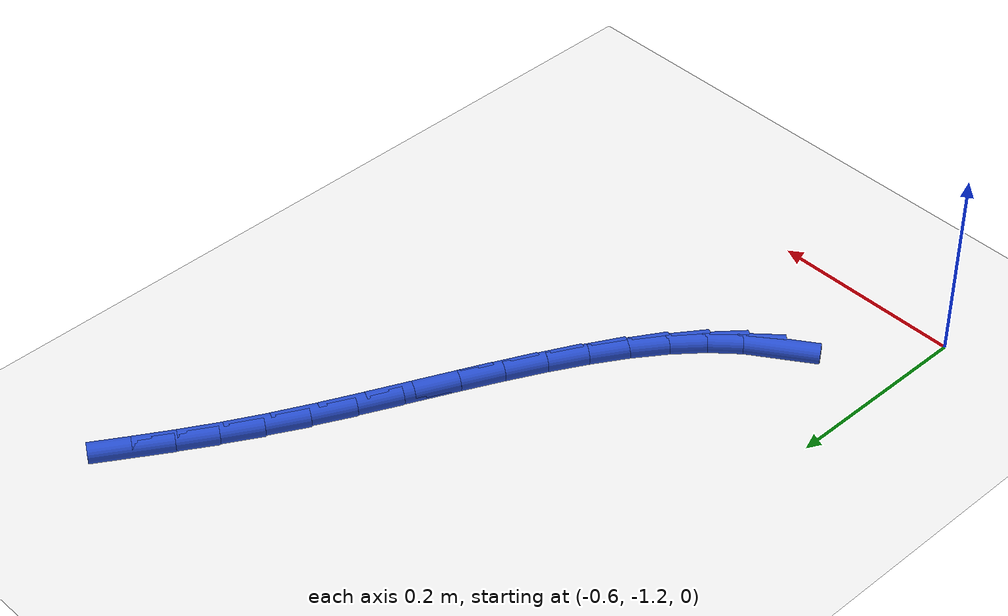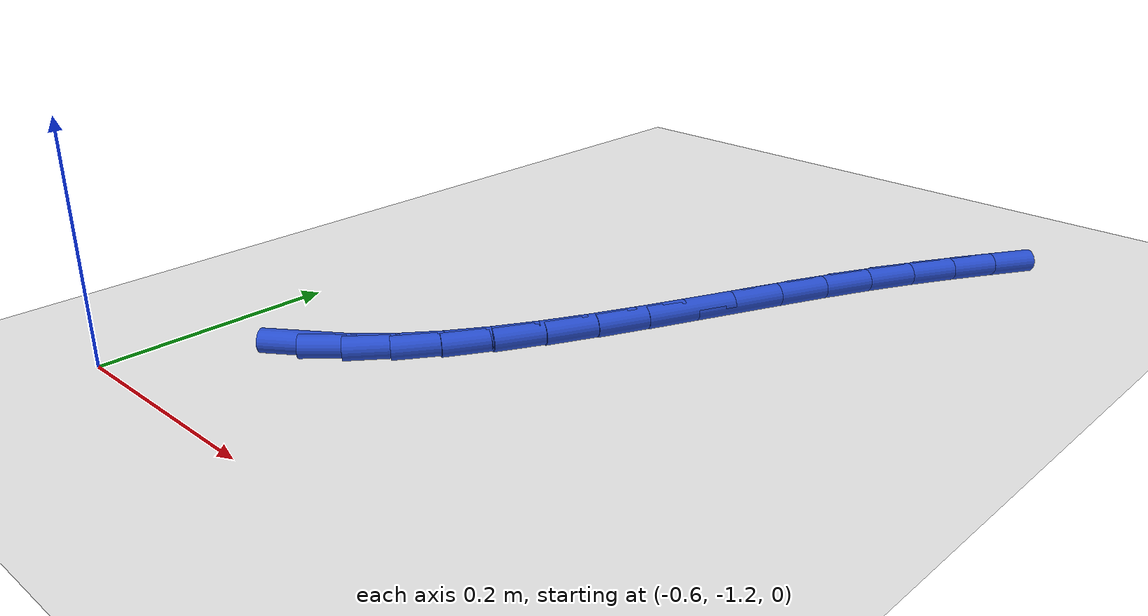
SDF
<sdf version="1.6">
 <world name="default">
  <model name="ground_plane">
   <static>1</static>
   <link name="link">
    <collision name="collision">
     <geometry><plane><normal>0 0 1</normal><size>100 100</size></plane></geometry>
     <surface><friction><ode><mu>100</mu><mu2>50</mu2></ode></friction></surface>
    </collision>
    <visual name="visual">
     <cast_shadows>0</cast_shadows>
     <geometry><plane><normal>0 0 1</normal><size>100 100</size></plane></geometry>
     <material>
      <script><uri>file://media/materials/scripts/gazebo.material</uri><name>Gazebo/WhiteGlow</name></script>
     </material>
    </visual>
   </link>
  </model>
  <model name="line">
   <link name="link_150">
    <pose>-0.497844327991714 -1.0755147405187322 0.01 0 1.57 0.6069006060644294</pose>
    <collision name="collision">
     <geometry><cylinder><radius>0.01</radius><length>0.08</length></cylinder></geometry>
    </collision>
    <visual name="visual">
     <material>
      <script><name>Gazebo/Blue</name><uri>file://media/materials/scripts/gazebo.material</uri></script>
     </material>
     <geometry><cylinder><radius>0.01</radius><length>0.08</length></cylinder></geometry>
    </visual>
   </link>
   <link name="link_151">
    <pose>-0.4704250698186313 -1.0564771270306426 0.01 0 1.57 0.7529966082276169</pose>
    <collision name="collision">
     <geometry><cylinder><radius>0.01</radius><length>0.08</length></cylinder></geometry>
    </collision>
    <visual name="visual">
     <material>
      <script><name>Gazebo/Blue</name><uri>file://media/materials/scripts/gazebo.material</uri></script>
     </material>
     <geometry><cylinder><radius>0.01</radius><length>0.08</length></cylinder></geometry>
    </visual>
   </link>
   <link name="link_152">
    <pose>-0.4449101212090136 -1.0325642766753929 0.01 0 1.57 0.868521582352478</pose>
    <collision name="collision">
     <geometry><cylinder><radius>0.01</radius><length>0.08</length></cylinder></geometry>
    </collision>
    <visual name="visual">
     <material>
      <script><name>Gazebo/Blue</name><uri>file://media/materials/scripts/gazebo.material</uri></script>
     </material>
     <geometry><cylinder><radius>0.01</radius><length>0.08</length></cylinder></geometry>
    </visual>
   </link>
   <link name="link_153">
    <pose>-0.421060533780112 -1.0043794187918909 0.01 0 1.57 0.957428312732397</pose>
    <collision name="collision">
     <geometry><cylinder><radius>0.01</radius><length>0.08</length></cylinder></geometry>
    </collision>
    <visual name="visual">
     <material>
      <script><name>Gazebo/Blue</name><uri>file://media/materials/scripts/gazebo.material</uri></script>
     </material>
     <geometry><cylinder><radius>0.01</radius><length>0.08</length></cylinder></geometry>
    </visual>
   </link>
   <link name="link_154">
    <pose>-0.3986373591491775 -0.9725257827190423 0.01 0 1.57 1.0244139173818925</pose>
    <collision name="collision">
     <geometry><cylinder><radius>0.01</radius><length>0.08</length></cylinder></geometry>
    </collision>
    <visual name="visual">
     <material>
      <script><name>Gazebo/Blue</name><uri>file://media/materials/scripts/gazebo.material</uri></script>
     </material>
     <geometry><cylinder><radius>0.01</radius><length>0.08</length></cylinder></geometry>
    </visual>
   </link>
   <link name="link_155">
    <pose>-0.377401648933462 -0.937606597795757 0.01 0 1.57 1.0735697910841198</pose>
    <collision name="collision">
     <geometry><cylinder><radius>0.01</radius><length>0.08</length></cylinder></geometry>
    </collision>
    <visual name="visual">
     <material>
      <script><name>Gazebo/Blue</name><uri>file://media/materials/scripts/gazebo.material</uri></script>
     </material>
     <geometry><cylinder><radius>0.01</radius><length>0.08</length></cylinder></geometry>
    </visual>
   </link>
   <link name="link_156">
    <pose>-0.3571144547502161 -0.9002250933609411 0.01 0 1.57 1.108019027293459</pose>
    <collision name="collision">
     <geometry><cylinder><radius>0.01</radius><length>0.08</length></cylinder></geometry>
    </collision>
    <visual name="visual">
     <material>
      <script><name>Gazebo/Blue</name><uri>file://media/materials/scripts/gazebo.material</uri></script>
     </material>
     <geometry><cylinder><radius>0.01</radius><length>0.08</length></cylinder></geometry>
    </visual>
   </link>
   <link name="link_157">
    <pose>-0.3375368282166914 -0.8609844987535021 0.01 0 1.57 1.1299463935147231</pose>
    <collision name="collision">
     <geometry><cylinder><radius>0.01</radius><length>0.08</length></cylinder></geometry>
    </collision>
    <visual name="visual">
     <material>
      <script><name>Gazebo/Blue</name><uri>file://media/materials/scripts/gazebo.material</uri></script>
     </material>
     <geometry><cylinder><radius>0.01</radius><length>0.08</length></cylinder></geometry>
    </visual>
   </link>
   <link name="link_158">
    <pose>-0.3184298209501387 -0.8204880433123474 0.01 0 1.57 1.1407260534056922</pose>
    <collision name="collision">
     <geometry><cylinder><radius>0.01</radius><length>0.08</length></cylinder></geometry>
    </collision>
    <visual name="visual">
     <material>
      <script><name>Gazebo/Blue</name><uri>file://media/materials/scripts/gazebo.material</uri></script>
     </material>
     <geometry><cylinder><radius>0.01</radius><length>0.08</length></cylinder></geometry>
    </visual>
   </link>
   <link name="link_159">
    <pose>-0.2995544845678089 -0.7793389563763833 0.01 0 1.57 1.1410345883458162</pose>
    <collision name="collision">
     <geometry><cylinder><radius>0.01</radius><length>0.08</length></cylinder></geometry>
    </collision>
    <visual name="visual">
     <material>
      <script><name>Gazebo/Blue</name><uri>file://media/materials/scripts/gazebo.material</uri></script>
     </material>
     <geometry><cylinder><radius>0.01</radius><length>0.08</length></cylinder></geometry>
    </visual>
   </link>
   <link name="link_160">
    <pose>-0.2806718706869541 -0.7381404672845191 0.01 0 1.57 1.1309146668734273</pose>
    <collision name="collision">
     <geometry><cylinder><radius>0.01</radius><length>0.08</length></cylinder></geometry>
    </collision>
    <visual name="visual">
     <material>
      <script><name>Gazebo/Blue</name><uri>file://media/materials/scripts/gazebo.material</uri></script>
     </material>
     <geometry><cylinder><radius>0.01</radius><length>0.08</length></cylinder></geometry>
    </visual>
   </link>
   <link name="link_161">
    <pose>-0.2615430309248249 -0.6974958053756612 0.01 0 1.57 1.1097816296092486</pose>
    <collision name="collision">
     <geometry><cylinder><radius>0.01</radius><length>0.08</length></cylinder></geometry>
    </collision>
    <visual name="visual">
     <material>
      <script><name>Gazebo/Blue</name><uri>file://media/materials/scripts/gazebo.material</uri></script>
     </material>
     <geometry><cylinder><radius>0.01</radius><length>0.08</length></cylinder></geometry>
    </visual>
   </link>
   <link name="link_162">
    <pose>-0.24192901689867272 -0.6580081999887172 0.01 0 1.57 1.077193187049896</pose>
    <collision name="collision">
     <geometry><cylinder><radius>0.01</radius><length>0.08</length></cylinder></geometry>
    </collision>
    <visual name="visual">
     <material>
      <script><name>Gazebo/Blue</name><uri>file://media/materials/scripts/gazebo.material</uri></script>
     </material>
     <geometry><cylinder><radius>0.01</radius><length>0.08</length></cylinder></geometry>
    </visual>
   </link>
   <link name="link_163">
    <pose>-0.2216112692993503 -0.6202446473111994 0.01 0 1.57 1.044094160353501</pose>
    <collision name="collision">
     <geometry><cylinder><radius>0.01</radius><length>0.08</length></cylinder></geometry>
    </collision>
    <visual name="visual">
     <material>
      <script><name>Gazebo/Blue</name><uri>file://media/materials/scripts/gazebo.material</uri></script>
     </material>
     <geometry><cylinder><radius>0.01</radius><length>0.08</length></cylinder></geometry>
    </visual>
   </link>
   <link name="link_164">
    <pose>-0.2006726680412372 -0.584236459897529 0.01 0 1.57 1.020498849977891</pose>
    <collision name="collision">
     <geometry><cylinder><radius>0.01</radius><length>0.08</length></cylinder></geometry>
    </collision>
    <visual name="visual">
     <material>
      <script><name>Gazebo/Blue</name><uri>file://media/materials/scripts/gazebo.material</uri></script>
     </material>
     <geometry><cylinder><radius>0.01</radius><length>0.08</length></cylinder></geometry>
    </visual>
   </link>
   <link name="link_165">
    <pose>-0.17942629298468538 -0.549605865041244 0.01 0 1.57 1.0077300745632973</pose>
    <collision name="collision">
     <geometry><cylinder><radius>0.01</radius><length>0.08</length></cylinder></geometry>
    </collision>
    <visual name="visual">
     <material>
      <script><name>Gazebo/Blue</name><uri>file://media/materials/scripts/gazebo.material</uri></script>
     </material>
     <geometry><cylinder><radius>0.01</radius><length>0.08</length></cylinder></geometry>
    </visual>
   </link>
  </model>
 </world>
</sdf>
